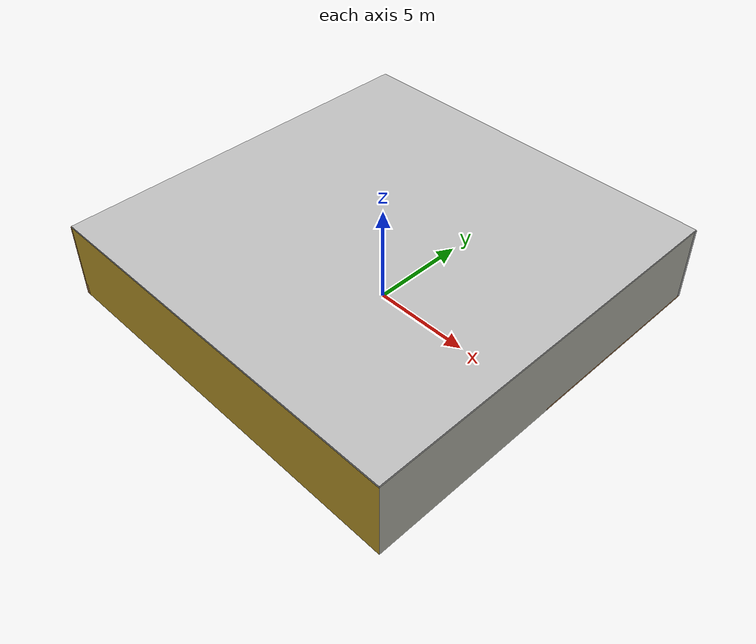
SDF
<sdf version="1.4">
 <world name="default">
  <physics type="ode">
   <max_step_size>0.001</max_step_size>
   <real_time_factor>1</real_time_factor>
   <real_time_update_rate>1000</real_time_update_rate>
   <gravity>0 0 -9.8</gravity>
  </physics>
  <scene><ambient>0.4 0.4 0.4 1</ambient><background>0.7 0.7 0.7 1</background><shadows>1</shadows></scene>
  <model name="Surrounding">
   <static>1</static>
   <link name="Ceiling">
    <collision name="Ceiling_Collision"><geometry><box><size>20 20 0.1</size></box></geometry></collision>
    <visual name="Ceiling_Visual">
     <geometry><box><size>20 20 0.1</size></box></geometry>
     <material>
      <script><uri>file://media/materials/scripts/gazebo.material</uri><name>Gazebo/CloudySky</name></script>
     </material>
    </visual>
    <pose>0 0 4.05 0 0 0</pose>
   </link>
   <link name="Wall_South">
    <collision name="Wall_South_Collision">
     <geometry><box><size>20 0 4</size></box></geometry>
     <pose>0 0 2 0 -0 0</pose>
    </collision>
    <visual name="Wall_South_Visual">
     <pose>0 0 2 0 -0 0</pose>
     <geometry><box><size>20 0 4</size></box></geometry>
     <material>
      <script><uri>file://media/materials/scripts/gazebo.material</uri><name>Gazebo/Gold</name></script>
     </material>
    </visual>
    <velocity_decay><linear>0</linear><angular>0</angular></velocity_decay>
    <pose>0 -10 0 0 -0 0</pose>
   </link>
   <link name="Wall_East">
    <collision name="Wall_21_Collision">
     <geometry><box><size>20 0 4</size></box></geometry>
     <pose>0 0 2 0 -0 0</pose>
    </collision>
    <visual name="Wall_21_Visual">
     <pose>0 0 2 0 -0 0</pose>
     <geometry><box><size>20 0 4</size></box></geometry>
     <material>
      <script><uri>file://media/materials/scripts/gazebo.material</uri><name>Gazebo/PaintedWall</name></script>
     </material>
    </visual>
    <velocity_decay><linear>0</linear><angular>0</angular></velocity_decay>
    <pose>10 0 0 0 -0 1.5708</pose>
   </link>
   <link name="Wall_North">
    <collision name="Wall_22_Collision">
     <geometry><box><size>20 0.2 4</size></box></geometry>
     <pose>0 0 2 0 -0 0</pose>
    </collision>
    <visual name="Wall_22_Visual">
     <pose>0 0 2 0 -0 0</pose>
     <geometry><box><size>20 0.2 4</size></box></geometry>
     <material>
      <script><uri>file://media/materials/scripts/gazebo.material</uri><name>Gazebo/LightOff</name></script>
     </material>
    </visual>
    <velocity_decay><linear>0</linear><angular>0</angular></velocity_decay>
    <pose>0 10 0 0 -0 0</pose>
   </link>
   <link name="Wall_West">
    <collision name="Wall_23_Collision">
     <geometry><box><size>20 0.2 4</size></box></geometry>
     <pose>0 0 2 0 -0 0</pose>
    </collision>
    <visual name="Wall_23_Visual">
     <pose>0 0 2 0 -0 0</pose>
     <geometry><box><size>20 0.2 4</size></box></geometry>
     <material>
      <script><uri>file://media/materials/scripts/gazebo.material</uri><name>Gazebo/Wood</name></script>
     </material>
    </visual>
    <velocity_decay><linear>0</linear><angular>0</angular></velocity_decay>
    <pose>-10 0 0 0 0 -1.5708</pose>
   </link>
   <link name="Ground_link">
    <collision name="collision">
     <pose>0 0 .05 0 -0 0</pose>
     <geometry><box><size>20 20 0.1</size></box></geometry>
    </collision>
    <visual name="visual">
     <pose>0 0 .05 0 -0 0</pose>
     <geometry><box><size>20 20 0.1</size></box></geometry>
     <material>
      <script><uri>file://media/materials/scripts/gazebo.material</uri><name>Gazebo/WoodPallet</name></script>
     </material>
    </visual>
   </link>
   <static>1</static>
  </model>
  <spherical_coordinates>
   <surface_model>EARTH_WGS84</surface_model>
   <latitude_deg>0</latitude_deg>
   <longitude_deg>0</longitude_deg>
   <elevation>0</elevation>
   <heading_deg>0</heading_deg>
  </spherical_coordinates>
  <light name="lightball_0" type="diffuse">
   <diffuse>0.8 0.8 0.8 1</diffuse>
   <specular>0.2 0.2 0.2 1</specular>
   <attenuation>
    <range>100</range>
    <constant>0.7</constant>
    <linear>0.01</linear>
    <quadratic>0.001</quadratic>
   </attenuation>
   <direction>-0.5 0.1 -0.9</direction>
   <pose>9.59078154559 6.09700878227 1.14797971756 0 0 0</pose>
  </light>
  <light name="lightball_1" type="diffuse">
   <diffuse>0.8 0.8 0.8 1</diffuse>
   <specular>0.2 0.2 0.2 1</specular>
   <attenuation>
    <range>100</range>
    <constant>0.7</constant>
    <linear>0.01</linear>
    <quadratic>0.001</quadratic>
   </attenuation>
   <direction>-0.5 0.1 -0.9</direction>
   <pose>-9.03670932261 8.65630354557 0.709336975493 0 0 0</pose>
  </light>
  <light name="lightball_2" type="diffuse">
   <diffuse>0.8 0.8 0.8 1</diffuse>
   <specular>0.2 0.2 0.2 1</specular>
   <attenuation>
    <range>100</range>
    <constant>0.7</constant>
    <linear>0.01</linear>
    <quadratic>0.001</quadratic>
   </attenuation>
   <direction>-0.5 0.1 -0.9</direction>
   <pose>-8.77936610829 4.37136850731 2.0880778423 0 0 0</pose>
  </light>
  <light name="lightball_3" type="diffuse">
   <diffuse>0.8 0.8 0.8 1</diffuse>
   <specular>0.2 0.2 0.2 1</specular>
   <attenuation>
    <range>100</range>
    <constant>0.7</constant>
    <linear>0.01</linear>
    <quadratic>0.001</quadratic>
   </attenuation>
   <direction>-0.5 0.1 -0.9</direction>
   <pose>1.06533902465 -9.86039990471 0.500371193078 0 0 0</pose>
  </light>
  <light name="lightball_4" type="diffuse">
   <diffuse>0.8 0.8 0.8 1</diffuse>
   <specular>0.2 0.2 0.2 1</specular>
   <attenuation>
    <range>100</range>
    <constant>0.7</constant>
    <linear>0.01</linear>
    <quadratic>0.001</quadratic>
   </attenuation>
   <direction>-0.5 0.1 -0.9</direction>
   <pose>-9.73859364859 4.51817890729 1.9258519936 0 0 0</pose>
  </light>
  <light name="lightball_5" type="diffuse">
   <diffuse>0.8 0.8 0.8 1</diffuse>
   <specular>0.2 0.2 0.2 1</specular>
   <attenuation>
    <range>100</range>
    <constant>0.7</constant>
    <linear>0.01</linear>
    <quadratic>0.001</quadratic>
   </attenuation>
   <direction>-0.5 0.1 -0.9</direction>
   <pose>0.630113117988 6.0995406919 0.710623817794 0 0 0</pose>
  </light>
  <light name="lightball_6" type="diffuse">
   <diffuse>0.8 0.8 0.8 1</diffuse>
   <specular>0.2 0.2 0.2 1</specular>
   <attenuation>
    <range>100</range>
    <constant>0.7</constant>
    <linear>0.01</linear>
    <quadratic>0.001</quadratic>
   </attenuation>
   <direction>-0.5 0.1 -0.9</direction>
   <pose>1.33446829657 -3.2947450142 1.18039378481 0 0 0</pose>
  </light>
  <light name="lightball_7" type="diffuse">
   <diffuse>0.8 0.8 0.8 1</diffuse>
   <specular>0.2 0.2 0.2 1</specular>
   <attenuation>
    <range>100</range>
    <constant>0.7</constant>
    <linear>0.01</linear>
    <quadratic>0.001</quadratic>
   </attenuation>
   <direction>-0.5 0.1 -0.9</direction>
   <pose>8.35560417371 -3.98550347871 1.74898458159 0 0 0</pose>
  </light>
  <light name="lightball_8" type="diffuse">
   <diffuse>0.8 0.8 0.8 1</diffuse>
   <specular>0.2 0.2 0.2 1</specular>
   <attenuation>
    <range>100</range>
    <constant>0.7</constant>
    <linear>0.01</linear>
    <quadratic>0.001</quadratic>
   </attenuation>
   <direction>-0.5 0.1 -0.9</direction>
   <pose>-2.01978161911 2.43834734272 0.953975330465 0 0 0</pose>
  </light>
  <light name="lightball_9" type="diffuse">
   <diffuse>0.8 0.8 0.8 1</diffuse>
   <specular>0.2 0.2 0.2 1</specular>
   <attenuation>
    <range>100</range>
    <constant>0.7</constant>
    <linear>0.01</linear>
    <quadratic>0.001</quadratic>
   </attenuation>
   <direction>-0.5 0.1 -0.9</direction>
   <pose>9.21451729978 -7.05996670413 2.11198323164 0 0 0</pose>
  </light>
  <light name="lightball_10" type="diffuse">
   <diffuse>0.8 0.8 0.8 1</diffuse>
   <specular>0.2 0.2 0.2 1</specular>
   <attenuation>
    <range>100</range>
    <constant>0.7</constant>
    <linear>0.01</linear>
    <quadratic>0.001</quadratic>
   </attenuation>
   <direction>-0.5 0.1 -0.9</direction>
   <pose>-4.18302138102 9.85955220071 1.23073039875 0 0 0</pose>
  </light>
  <light name="lightball_11" type="diffuse">
   <diffuse>0.8 0.8 0.8 1</diffuse>
   <specular>0.2 0.2 0.2 1</specular>
   <attenuation>
    <range>100</range>
    <constant>0.7</constant>
    <linear>0.01</linear>
    <quadratic>0.001</quadratic>
   </attenuation>
   <direction>-0.5 0.1 -0.9</direction>
   <pose>5.20877722798 -0.517969711677 2.36455895683 0 0 0</pose>
  </light>
  <light name="lightball_12" type="diffuse">
   <diffuse>0.8 0.8 0.8 1</diffuse>
   <specular>0.2 0.2 0.2 1</specular>
   <attenuation>
    <range>100</range>
    <constant>0.7</constant>
    <linear>0.01</linear>
    <quadratic>0.001</quadratic>
   </attenuation>
   <direction>-0.5 0.1 -0.9</direction>
   <pose>-2.92676910187 -9.90057539434 2.2248730922 0 0 0</pose>
  </light>
  <include>
   <uri>model://textured_shapes</uri>
   <pose>-7.49031357464 4.5780643749 0 0 0 1.45769134979</pose>
  </include>
  <include>
   <uri>model://robocup_3Dsim_goal</uri>
   <pose>-3.83263532585 8.13459263998 0 0 0 1.60077112046</pose>
  </include>
 </world>
</sdf>

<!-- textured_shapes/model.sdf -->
<sdf version="1.6">
  <model name="textured_shapes">
    <pose>0 0 0.5 0 0 0</pose>
    <link name="box">
      <pose>0 -1.5 0 0 0 0</pose>
      <collision name="collision">
        <geometry>
          <box>
            <size>1 1 1</size>
          </box>
        </geometry>
      </collision>
      <visual name="visual">
        <geometry>
          <box>
            <size>1 1 1</size>
          </box>
        </geometry>
        <material>
          <script>
            <uri>model://../model_source/models/textured_shapes/materials/scripts</uri>
            <uri>model://../model_source/models/textured_shapes/materials/textures</uri>
            <name>TexturedShape/Squares</name>
          </script>
        </material>
      </visual>
    </link>
    <link name="sphere">
      <collision name="collision">
        <geometry>
          <sphere>
            <radius>0.5</radius>
          </sphere>
        </geometry>
      </collision>
      <visual name="visual">
        <geometry>
          <sphere>
            <radius>0.5</radius>
          </sphere>
        </geometry>
        <material>
          <script>
            <uri>model://../model_source/models/textured_shapes/materials/scripts</uri>
            <uri>model://../model_source/models/textured_shapes/materials/textures</uri>
            <name>TexturedShape/Squares</name>
          </script>
        </material>
      </visual>
    </link>
    <link name="cylinder">
      <pose>0 1.5 0 0 0 0</pose>
      <collision name="collision">
        <geometry>
          <cylinder>
            <radius>0.5</radius>
            <length>1</length>
          </cylinder>
        </geometry>
      </collision>
      <visual name="visual">
        <geometry>
          <cylinder>
            <radius>0.5</radius>
            <length>1</length>
          </cylinder>
        </geometry>
        <material>
          <script>
            <uri>model://../model_source/models/textured_shapes/materials/scripts</uri>
            <uri>model://../model_source/models/textured_shapes/materials/textures</uri>
            <name>TexturedShape/Squares</name>
          </script>
        </material>
      </visual>
    </link>
  </model>
</sdf>

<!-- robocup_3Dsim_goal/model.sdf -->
<sdf version="1.5">
  <model name="robocup_3d_goal">
    <static>true</static>
    <link name="left_post">
      <pose>0 1.05 0.45 0 0 0</pose>
      <collision name="collision">
        <geometry>
          <cylinder>
            <radius>0.05</radius>
            <length>0.9</length>
          </cylinder>
        </geometry>
      </collision>
      <visual name="visual">
        <geometry>
          <cylinder>
            <radius>0.05</radius>
            <length>0.9</length>
          </cylinder>
        </geometry>
        <material>
          <script>
            <uri>file://media/materials/scripts/gazebo.material</uri>
            <name>Gazebo/ZincYellow</name>
          </script>
        </material>
      </visual>
    </link>
    <link name="left_support_horiz_lower">
      <pose>0.30 1.05 0.01 0 0 0</pose>
      <collision name="collision">
        <geometry>
          <box>
            <size>0.50 0.02 0.02</size>
          </box>
        </geometry>
      </collision>
      <visual name="visual">
        <geometry>
          <box>
            <size>0.50 0.02 0.02</size>
          </box>
        </geometry>
        <material>
          <script>
            <uri>file://media/materials/scripts/gazebo.material</uri>
            <name>Gazebo/White</name>
          </script>
        </material>
      </visual>
    </link>
    <link name="left_support_horiz_upper">
      <pose>0.30 1.05 0.79 0 0 0</pose>
      <collision name="collision">
        <geometry>
          <box>
            <size>0.50 0.02 0.02</size>
          </box>
        </geometry>
      </collision>
      <visual name="visual">
        <geometry>
          <box>
            <size>0.50 0.02 0.02</size>
          </box>
        </geometry>
        <material>
          <script>
            <uri>file://media/materials/scripts/gazebo.material</uri>
            <name>Gazebo/White</name>
          </script>
        </material>
      </visual>
    </link>
    <link name="left_support_vertical">
      <pose>0.56 1.05 0.4 0 1.5708 0</pose>
      <collision name="collision">
        <geometry>
          <box>
            <size>0.80 0.02 0.02</size>
          </box>
        </geometry>
      </collision>
      <visual name="visual">
        <geometry>
          <box>
            <size>0.80 0.02 0.02</size>
          </box>
        </geometry>
        <material>
          <script>
            <uri>file://media/materials/scripts/gazebo.material</uri>
            <name>Gazebo/White</name>
          </script>
        </material>
      </visual>
    </link>
    <link name="right_support_horiz_lower">
      <pose>0.30 -1.05 0.01 0 0 0</pose>
      <collision name="collision">
        <geometry>
          <box>
            <size>0.50 0.02 0.02</size>
          </box>
        </geometry>
      </collision>
      <visual name="visual">
        <geometry>
          <box>
            <size>0.50 0.02 0.02</size>
          </box>
        </geometry>
        <material>
          <script>
            <uri>file://media/materials/scripts/gazebo.material</uri>
            <name>Gazebo/White</name>
          </script>
        </material>
      </visual>
    </link>
    <link name="right_support_horiz_upper">
      <pose>0.30 -1.05 0.79 0 0 0</pose>
      <collision name="collision">
        <geometry>
          <box>
            <size>0.50 0.02 0.02</size>
          </box>
        </geometry>
      </collision>
      <visual name="visual">
        <geometry>
          <box>
            <size>0.50 0.02 0.02</size>
          </box>
        </geometry>
        <material>
          <script>
            <uri>file://media/materials/scripts/gazebo.material</uri>
            <name>Gazebo/White</name>
          </script>
        </material>
      </visual>
    </link>
    <link name="right_support_vertical">
      <pose>0.56 -1.05 0.4 0 1.5708 0</pose>
      <collision name="collision">
        <geometry>
          <box>
            <size>0.80 0.02 0.02</size>
          </box>
        </geometry>
      </collision>
      <visual name="visual">
        <geometry>
          <box>
            <size>0.80 0.02 0.02</size>
          </box>
        </geometry>
        <material>
          <script>
            <uri>file://media/materials/scripts/gazebo.material</uri>
            <name>Gazebo/White</name>
          </script>
        </material>
      </visual>
    </link>
    <link name="center_support_horiz_lower">
      <pose>0.56 0 0.01 0 1.5708 0</pose>
      <collision name="collision">
        <geometry>
          <box>
            <size>0.02 2.08 0.02</size>
          </box>
        </geometry>
      </collision>
      <visual name="visual">
        <geometry>
          <box>
            <size>0.02 2.08 0.02</size>
          </box>
        </geometry>
        <material>
          <script>
            <uri>file://media/materials/scripts/gazebo.material</uri>
            <name>Gazebo/White</name>
          </script>
        </material>
      </visual>
    </link>
    <link name="center_support_horiz_upper">
      <pose>0.56 0 0.79 0 1.5708 0</pose>
      <collision name="collision">
        <geometry>
          <box>
            <size>0.02 2.08 0.02</size>
          </box>
        </geometry>
      </collision>
      <visual name="visual">
        <geometry>
          <box>
            <size>0.02 2.08 0.02</size>
          </box>
        </geometry>
        <material>
          <script>
            <uri>file://media/materials/scripts/gazebo.material</uri>
            <name>Gazebo/White</name>
          </script>
        </material>
      </visual>
    </link>
    <link name="right_post">
      <pose>0 -1.05 0.45 0 0 0</pose>
      <collision name="collision">
        <geometry>
          <cylinder>
            <radius>0.05</radius>
            <length>0.9</length>
          </cylinder>
        </geometry>
      </collision>
      <visual name="visual">
        <geometry>
          <cylinder>
            <radius>0.05</radius>
            <length>0.9</length>
          </cylinder>
        </geometry>
        <material>
          <script>
            <uri>file://media/materials/scripts/gazebo.material</uri>
            <name>Gazebo/ZincYellow</name>
          </script>
        </material>
      </visual>
    </link>
    <link name="crossbar">
      <pose>0 0 0.85 1.57 1.57 0</pose>
      <collision name="collision">
        <geometry>
          <cylinder>
            <radius>0.05</radius>
            <length>2.0</length>
          </cylinder>
        </geometry>
      </collision>
      <visual name="visual">
        <geometry>
          <cylinder>
            <radius>0.05</radius>
            <length>2.0</length>
          </cylinder>
        </geometry>
        <material>
          <script>
            <uri>file://media/materials/scripts/gazebo.material</uri>
            <name>Gazebo/ZincYellow</name>
          </script>
        </material>
      </visual>
    </link>
    <link name="center_net">
      <pose>0.56 0 0.40 0 0 0</pose>
      <collision name="collision">
        <geometry>
          <box>
            <size>0.01 2.1 0.80</size>
          </box>
        </geometry>
      </collision>
      <visual name="visual">
        <geometry>
          <box>
            <size>0.01 2.1 0.80</size>
          </box>
        </geometry>
        <material>
          <script>
            <uri>model://../model_source/models/robocup09_spl_field/materials/scripts/</uri>
            <uri>model://../model_source/models/robocup09_spl_field/materials/textures/</uri>
            <name>RoboCup/Net</name>
          </script>
        </material>
      </visual>
    </link>
    <link name="left_net">
      <pose>0.30 1.05 0.40 0 0 0</pose>
      <collision name="collision">
        <geometry>
          <box>
            <size>0.50 0.01 0.76</size>
          </box>
        </geometry>
      </collision>
      <visual name="visual">
        <geometry>
          <box>
            <size>0.50 0.01 0.76</size>
          </box>
        </geometry>
        <material>
          <script>
            <uri>model://../model_source/models/robocup09_spl_field/materials/scripts/</uri>
            <uri>model://../model_source/models/robocup09_spl_field/materials/textures/</uri>
            <name>RoboCup/Net</name>
          </script>
        </material>
      </visual>
    </link>
    <link name="right_net">
      <pose>0.30 -1.05 0.40 0 0 0</pose>
      <collision name="collision">
        <geometry>
          <box>
            <size>0.50 0.01 0.76</size>
          </box>
        </geometry>
      </collision>
      <visual name="visual">
        <geometry>
          <box>
            <size>0.50 0.01 0.76</size>
          </box>
        </geometry>
        <material>
          <script>
            <uri>model://../model_source/models/robocup09_spl_field/materials/scripts/</uri>
            <uri>model://../model_source/models/robocup09_spl_field/materials/textures/</uri>
            <name>RoboCup/Net</name>
          </script>
        </material>
      </visual>
    </link>
  </model>
</sdf>
